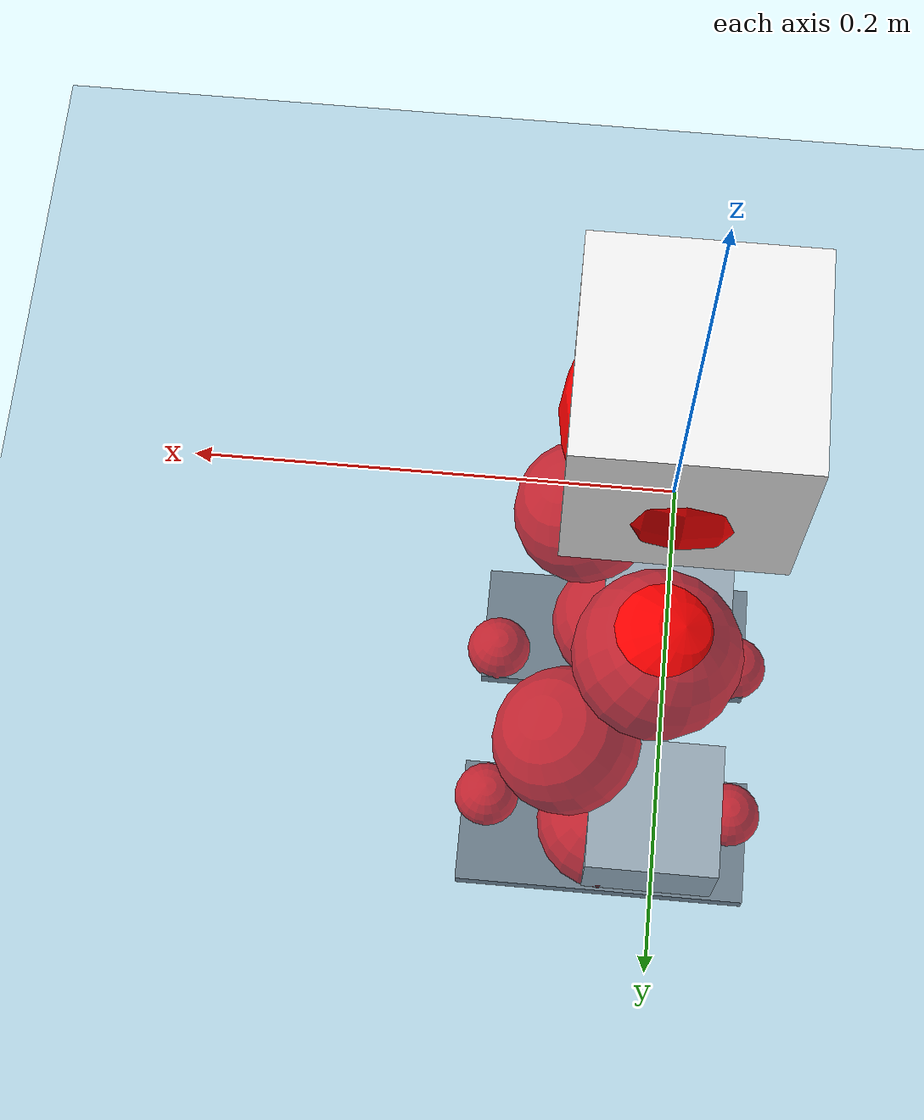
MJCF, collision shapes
<mujoco model="pi_12dof_release_v1">
  <compiler angle="radian" assetdir="assets" balanceinertia="true" inertiafromgeom="false"/>

  <option timestep="0.005" density="1.2" viscosity="2e-05"/>

  <size nkey="1"/>

  <visual>
    <quality shadowsize="8192"/>
    <map shadowclip="0.5"/>
  </visual>

  <default>
    <default class="/">
      <joint armature="0.01" damping="0.01" frictionloss="0.01"/>
      <geom contype="0" conaffinity="0" group="1" solref="-1000 -80"/>
      <site size="0.01 0.005 0.005" group="5"/>
      <general forcelimited="true" biastype="affine" gainprm="20" biasprm="0 -20 -0.5"/>
      <default class="foot">
        <geom size="0.0845 0.036 0.005" type="box" condim="6" group="4" priority="1" friction="0.9 0.2 0.2" solimp="0.015 1 0.005"/>
      </default>
      <default class="reward_collision_sphere">
        <geom group="5" rgba="1 0 0 1"/>
      </default>
    </default>
  </default>

  <asset>
    <texture type="skybox" colorspace="auto" name="//unnamed_texture_0" builtin="gradient" rgb1="0.95 0.95 0.95" rgb2="0.95 0.95 0.95" width="100" height="600"/>
    <texture type="2d" colorspace="auto" name="texplane" builtin="checker" rgb1="0.345 0.575 0.748" rgb2="0.345 0.575 0.748" markrgb="1 1 1" width="512" height="512"/>
    <material name="MatPlane" class="/" texture="texplane" texuniform="true" texrepeat="2 2" specular="0.9"/>
    <mesh name="baselink_1" class="/" file="baselink_1.STL"/>
    <mesh name="r_hip_pitch_link" class="/" file="r_hip_pitch_link.STL"/>
    <mesh name="r_hip_roll_link" class="/" file="r_hip_roll_link.STL"/>
    <mesh name="r_thigh_link" class="/" file="r_thigh_link.STL"/>
    <mesh name="r_calf_link" class="/" file="r_calf_link.STL"/>
    <mesh name="r_ankle_pitch_link" class="/" file="r_ankle_pitch_link.STL"/>
    <mesh name="r_ankle_roll_link" class="/" file="r_ankle_roll_link.STL"/>
    <mesh name="l_hip_pitch_link" class="/" file="l_hip_pitch_link.STL"/>
    <mesh name="l_hip_roll_link" class="/" file="l_hip_roll_link.STL"/>
    <mesh name="l_thigh_link" class="/" file="l_thigh_link.STL"/>
    <mesh name="l_calf_link" class="/" file="l_calf_link.STL"/>
    <mesh name="l_ankle_pitch_link" class="/" file="l_ankle_pitch_link.STL"/>
    <mesh name="l_ankle_roll_link" class="/" file="l_ankle_roll_link.STL"/>
  </asset>

  <worldbody>
    <geom name="floor" class="/" size="100 100 0.125" type="plane" group="0" material="MatPlane"/>
    <light name="toplight_shadow" class="/" pos="0 0 5" dir="0.0990148 0.0990148 -0.990148" type="directional" ambient="0.04 0.04 0.04" diffuse="0.55 0.55 0.55" specular="0.12 0.12 0.12"/>
    <light name="toplight_fill" class="/" pos="0 0 5" dir="0.0990148 0.0990148 -0.990148" type="directional" castshadow="false" ambient="0.04 0.04 0.04" diffuse="0.3 0.3 0.3" specular="0.08 0.08 0.08"/>
    <body name="trunk" pos="0.000562447 0.000293925 0.000565978" quat="1 2.05752e-05 -1.11976e-05 1.21887e-05">
      <inertial pos="0.00194554 -0.000865754 0.0383786" quat="0.694208 0.00873962 0.00900541 0.719665" mass="1.59285" diaginertia="0.0102069 0.00229213 0.00323449"/>
      <joint name="//unnamed_joint_0" type="free"/>
      <geom name="//unnamed_geom_1" class="/" type="mesh" density="0" rgba="1 1 1 1" mesh="baselink_1"/>
      <geom name="//unnamed_geom_2" class="/" size="0.0453596 0.0453596 0.0453596" pos="0 0 0.0761195" type="box" rgba="1 1 1 1"/>
      <geom name="//unnamed_geom_3" class="reward_collision_sphere" size="0.0498956" pos="0 0 0.0666046"/>
      <site name="imu" class="/" pos="0.00148903 -0.00388479 -0.000495134" size="0.00907192"/>
      <camera name="track" class="/" pos="0 -1.52183 0" quat="0.707107 0.707107 0 0" mode="trackcom"/>
      <camera name="ego_camera" class="/" pos="0.0756878 0 0.171269" quat="-0.5 -0.5 0.5 0.5"/>
      <body name="r_hip_pitch_link" pos="1.93812e-05 -0.0173816 -0.0318111" quat="0.992188 0.000211216 -0.124755 -0.000122446">
        <inertial pos="0.00155055 -0.0421264 0.000308958" quat="-0.0181086 0.706053 -0.0276892 0.707386" mass="0.279845" diaginertia="0.000115146 2.49367e-05 6.4807e-05"/>
        <joint name="r_hip_pitch_joint" class="/" pos="0 0 0" axis="-0.0013207 -0.999999 -0.000867553" stiffness="0.00309359" range="-1.73498 1.25285" armature="0.00894481" damping="0.0110708" frictionloss="0.00873035"/>
        <geom name="//unnamed_geom_4" class="/" type="mesh" density="0" rgba="0.75294 0.75294 0.75294 1" mesh="r_hip_pitch_link"/>
        <geom name="//unnamed_geom_5" class="/" size="0.000453596 0.000453596 0.000453596" type="box" rgba="0.75294 0.75294 0.75294 1"/>
        <body name="r_hip_roll_link" pos="-0.000721262 -0.0418481 -0.000385251" quat="1 -7.8296e-05 -0.000182602 0.000229827">
          <inertial pos="-0.00188717 0.000613529 -0.0587828" quat="0.705961 -0.0789706 -0.0824579 0.698987" mass="0.293783" diaginertia="0.000350387 7.13641e-05 0.00010203"/>
          <joint name="r_hip_roll_joint" class="/" pos="0 0 0" axis="-0.999993 0.000125282 -0.00385481" range="-0.129287 0.513043" armature="0.00919874" damping="0.00232495" frictionloss="0.00885912"/>
          <geom name="//unnamed_geom_6" class="/" type="mesh" density="0" rgba="0.75294 0.75294 0.75294 1" mesh="r_hip_roll_link"/>
          <geom name="//unnamed_geom_7" class="/" size="0.000453596 0.000453596 0.000453596" type="box" rgba="0.75294 0.75294 0.75294 1"/>
          <geom name="//unnamed_geom_8" class="reward_collision_sphere" size="0.0362877"/>
          <body name="r_thigh_link" pos="0.000355326 0.00104046 -0.0655036" quat="1 1.71686e-05 0.000144746 0.000350294">
            <inertial pos="0.00102057 0.000655433 -0.0461331" quat="0.737217 0.675656 -0.000543535 0.000738771" mass="0.0842269" diaginertia="0.000133311 2.40886e-05 4.57236e-05"/>
            <joint name="r_thigh_joint" class="/" pos="0 0 0" axis="0.000366563 0.00146981 -0.999999" range="-0.289504 0.578004" armature="0.0094053" damping="0.00491426" frictionloss="0.00880315"/>
            <geom name="//unnamed_geom_9" class="/" type="mesh" density="0" rgba="0.75294 0.75294 0.75294 1" mesh="r_thigh_link"/>
            <geom name="//unnamed_geom_10" class="/" size="0.000453596 0.000453596 0.000453596" type="box" rgba="0.75294 0.75294 0.75294 1"/>
            <body name="r_calf_link" pos="0.000383534 -0.00172554 -0.0668223" quat="0.9476 -0.000169158 0.319459 -0.000243943">
              <inertial pos="-0.000849982 -0.000295779 -0.0666418" quat="0.999971 -0.00342318 -0.000737648 0.00682154" mass="0.610155" diaginertia="0.00375676 0.000901748 0.000138992"/>
              <joint name="r_calf_joint" class="/" pos="0 0 0" axis="0.00441156 -0.999989 0.00151345" range="-1.64325 0.651051" armature="0.00901141" damping="0.00958374" frictionloss="0.00875213"/>
              <geom name="//unnamed_geom_11" class="/" type="mesh" density="0" rgba="0.75294 0.75294 0.75294 1" mesh="r_calf_link"/>
              <geom name="//unnamed_geom_12" class="/" size="0.000453596 0.000453596 0.000453596" type="box" rgba="0.75294 0.75294 0.75294 1"/>
              <geom name="//unnamed_geom_13" class="reward_collision_sphere" size="0.0362877"/>
              <body name="r_ankle_pitch_link" pos="0.000570269 0.000772275 -0.132929" quat="0.980077 7.36284e-05 -0.19862 -1.36081e-05">
                <inertial pos="0.00415081 0.00344878 -5.39726e-05" quat="0.00441343 0.709146 -0.00454124 0.705033" mass="0.13092" diaginertia="0.000325585 5.68878e-05 9.36012e-05"/>
                <joint name="r_ankle_pitch_joint" class="/" pos="0 0 0" axis="0.000210133 -1 0.000733433" range="-1.30753 0.501415" armature="0.0089478" damping="0.0104832" frictionloss="0.00870126"/>
                <geom name="//unnamed_geom_14" class="/" type="mesh" density="0" rgba="0.75294 0.75294 0.75294 1" mesh="r_ankle_pitch_link"/>
                <geom name="//unnamed_geom_15" class="/" size="0.0353805 0.0362877 0.0226798" type="box" rgba="0.75294 0.75294 0.75294 1"/>
                <body name="r_ankle_roll_link" pos="0.0772718 0.00369152 5.31018e-05" quat="1 -6.95172e-06 2.10156e-05 -1.27421e-05">
                  <inertial pos="-0.0242184 -0.000253568 -0.0138647" quat="0.55983 0.430401 0.434867 0.558781" mass="0.387862" diaginertia="0.00118548 0.000263293 0.000223165"/>
                  <joint name="r_ankle_roll_joint" class="/" pos="0 0 0" axis="-0.999996 -0.00249072 -0.00141443" range="-0.152192 0.144071" armature="0.00899112" damping="0.00292534" frictionloss="0.00908403"/>
                  <geom name="//unnamed_geom_16" class="/" type="mesh" density="0" rgba="0.75294 0.75294 0.75294 1" mesh="r_ankle_roll_link"/>
                  <geom name="//unnamed_geom_17" class="/" type="mesh" rgba="0.75294 0.75294 0.75294 1" mesh="r_ankle_roll_link"/>
                  <geom name="right_foot" class="foot" size="0.0754422 0.0330381 0.00458816" pos="-0.0514677 0 -0.0418657"/>
                  <geom name="//unnamed_geom_19" class="reward_collision_sphere" size="0.0362877" pos="-0.0504585 0 -0.0190299"/>
                  <geom name="//unnamed_geom_20" class="reward_collision_sphere" size="0.0181438" pos="0.0151376 0.0152183 -0.0380597"/>
                  <geom name="//unnamed_geom_21" class="reward_collision_sphere" size="0.0181438" pos="-0.1211 0.0152183 -0.0380597"/>
                  <site name="right_foot" class="foot" pos="-0.0514677 0 -0.0418657" size="0.00907192"/>
                </body>
              </body>
            </body>
          </body>
        </body>
      </body>
      <body name="l_hip_pitch_link" pos="0.00016995 0.0177439 -0.0306599" quat="0.992198 1.31119e-05 -0.124669 3.70384e-05">
        <inertial pos="0.000808337 0.0410111 0.00066585" quat="-0.0420002 0.705282 0.0299196 0.707048" mass="0.29318" diaginertia="0.000134655 2.69141e-05 7.89455e-05"/>
        <joint name="l_hip_pitch_joint" class="/" pos="0 0 0" axis="0.000224976 1 -0.000120565" range="-1.24811 1.75419" armature="0.00901724" damping="0.00919586" frictionloss="0.00909714"/>
        <geom name="//unnamed_geom_22" class="/" type="mesh" density="0" rgba="0.75294 0.75294 0.75294 1" mesh="l_hip_pitch_link"/>
        <geom name="//unnamed_geom_23" class="/" size="0.000453596 0.000453596 0.000453596" type="box" rgba="0.75294 0.75294 0.75294 1"/>
        <body name="l_hip_roll_link" pos="4.77601e-05 0.0428619 -0.000258692" quat="1 -4.48761e-06 -1.19868e-05 -4.83454e-06">
          <inertial pos="-0.00123396 -7.29177e-05 -0.0580068" quat="0.699251 -0.075258 -0.0780085 0.706611" mass="0.292484" diaginertia="0.000350108 7.14204e-05 9.96369e-05"/>
          <joint name="l_hip_roll_joint" class="/" pos="0 0 0" axis="-1 0.000706345 0.000602183" range="-0.499672 0.10363" armature="0.00909123" damping="0.00427779" frictionloss="0.00905225"/>
          <geom name="//unnamed_geom_24" class="/" type="mesh" density="0" rgba="0.75294 0.75294 0.75294 1" mesh="l_hip_roll_link"/>
          <geom name="//unnamed_geom_25" class="/" size="0.000453596 0.000453596 0.000453596" type="box" rgba="0.75294 0.75294 0.75294 1"/>
          <geom name="//unnamed_geom_26" class="reward_collision_sphere" size="0.0362877"/>
          <body name="l_thigh_link" pos="6.33943e-05 -0.000390134 -0.0664116" quat="1 8.92964e-05 -0.000131962 0.00013355">
            <inertial pos="0.000295944 -0.00111053 -0.0453007" quat="0.675411 0.737432 0.00335685 0.00152132" mass="0.0843179" diaginertia="0.000132279 2.41143e-05 4.4974e-05"/>
            <joint name="l_thigh_joint" class="/" pos="0 0 0" axis="-0.000177612 -0.000770617 -1" range="-0.601864 0.280954" armature="0.00878583" damping="0.00259444" frictionloss="0.00874122"/>
            <geom name="//unnamed_geom_27" class="/" type="mesh" density="0" rgba="0.75294 0.75294 0.75294 1" mesh="l_thigh_link"/>
            <geom name="//unnamed_geom_28" class="/" size="0.000453596 0.000453596 0.000453596" type="box" rgba="0.75294 0.75294 0.75294 1"/>
            <body name="l_calf_link" pos="-0.000157478 0.00109257 -0.0675559" quat="0.947634 -0.000146237 0.319359 4.02355e-05">
              <inertial pos="0.000602081 0.00148009 -0.067376" quat="0.999989 0.00447071 0.00118967 0.00105094" mass="0.607748" diaginertia="0.00367841 0.000892681 0.000136687"/>
              <joint name="l_calf_joint" class="/" pos="0 0 0" axis="0.00248646 0.999993 0.00277617" stiffness="0.00212523" range="-0.651647 1.66905" armature="0.00921823" damping="0.00652193" frictionloss="0.00925283"/>
              <geom name="//unnamed_geom_29" class="/" type="mesh" density="0" rgba="0.75294 0.75294 0.75294 1" mesh="l_calf_link"/>
              <geom name="//unnamed_geom_30" class="/" size="0.000453596 0.000453596 0.000453596" type="box" rgba="0.75294 0.75294 0.75294 1"/>
              <geom name="//unnamed_geom_31" class="reward_collision_sphere" size="0.0362877"/>
              <body name="l_ankle_pitch_link" pos="0.000410974 0.00101299 -0.133828" quat="0.980076 4.60159e-05 -0.198624 3.97053e-05">
                <inertial pos="0.00475776 -0.000910632 -9.99788e-06" quat="-0.00219824 0.706748 0.00216399 0.707458" mass="0.131896" diaginertia="0.000320768 5.59424e-05 9.33047e-05"/>
                <joint name="l_ankle_pitch_joint" class="/" pos="0 0 0" axis="-0.000150638 1 0.000113581" stiffness="0.00209726" range="-0.504815 1.29871" armature="0.00909155" damping="0.00675555" frictionloss="0.00887347"/>
                <geom name="//unnamed_geom_32" class="/" type="mesh" density="0" rgba="0.75294 0.75294 0.75294 1" mesh="l_ankle_pitch_link"/>
                <geom name="//unnamed_geom_33" class="/" size="0.0353805 0.0362877 0.0226798" type="box" rgba="0.75294 0.75294 0.75294 1"/>
                <body name="l_ankle_roll_link" pos="0.0766362 0.000323186 -0.000595129" quat="1 -8.43484e-05 0.000133355 4.54607e-05">
                  <inertial pos="-0.0241541 -0.000732667 -0.0138379" quat="0.560611 0.428988 0.437097 0.557343" mass="0.388414" diaginertia="0.00118204 0.000263426 0.000219321"/>
                  <joint name="l_ankle_roll_joint" class="/" pos="0 0 0" axis="-1 3.39137e-05 0.000438394" range="-0.155404 0.141334" armature="0.00905048" damping="0.00369263" frictionloss="0.00918217"/>
                  <geom name="//unnamed_geom_34" class="/" type="mesh" density="0" rgba="0.75294 0.75294 0.75294 1" mesh="l_ankle_roll_link"/>
                  <geom name="//unnamed_geom_35" class="/" type="mesh" rgba="0.75294 0.75294 0.75294 1" mesh="l_ankle_roll_link"/>
                  <geom name="left_foot" class="foot" size="0.0800794 0.0343536 0.00453157" pos="-0.0514677 0 -0.0418657"/>
                  <geom name="//unnamed_geom_37" class="reward_collision_sphere" size="0.0362877" pos="-0.0504585 0 -0.0190299"/>
                  <geom name="//unnamed_geom_38" class="reward_collision_sphere" size="0.0181438" pos="0.0151376 -0.0152183 -0.0380597"/>
                  <geom name="//unnamed_geom_39" class="reward_collision_sphere" size="0.0181438" pos="-0.1211 -0.0152183 -0.0380597"/>
                  <site name="left_foot" class="foot" pos="-0.0514677 0 -0.0418657" size="0.00907192"/>
                </body>
              </body>
            </body>
          </body>
        </body>
      </body>
    </body>
  </worldbody>

  <contact>
    <pair class="/" geom1="floor" geom2="right_foot" name="//unnamed_contact_1"/>
    <pair class="/" geom1="floor" geom2="left_foot" name="//unnamed_contact_0"/>
  </contact>

  <actuator>
    <general name="r_hip_pitch_joint" class="/" joint="r_hip_pitch_joint" forcerange="-18.9359 18.9359" gainprm="18.1675" biasprm="0 -18.1675 -0.444616"/>
    <general name="r_hip_roll_joint" class="/" joint="r_hip_roll_joint" forcerange="-18.4514 18.4514" gainprm="18.1675" biasprm="0 -18.1675 -0.444616"/>
    <general name="r_thigh_joint" class="/" joint="r_thigh_joint" forcerange="-18.9274 18.9274" gainprm="18.1675" biasprm="0 -18.1675 -0.444616"/>
    <general name="r_calf_joint" class="/" joint="r_calf_joint" forcerange="-19.3383 19.3383" gainprm="18.1675" biasprm="0 -18.1675 -0.444616"/>
    <general name="r_ankle_pitch_joint" class="/" joint="r_ankle_pitch_joint" forcerange="-19.3178 19.3178" gainprm="18.1675" biasprm="0 -18.1675 -0.444616"/>
    <general name="r_ankle_roll_joint" class="/" joint="r_ankle_roll_joint" forcerange="-19.0782 19.0782" gainprm="18.1675" biasprm="0 -18.1675 -0.444616"/>
    <general name="l_hip_pitch_joint" class="/" joint="l_hip_pitch_joint" forcerange="-19.1552 19.1552" gainprm="18.1675" biasprm="0 -18.1675 -0.444616"/>
    <general name="l_hip_roll_joint" class="/" joint="l_hip_roll_joint" forcerange="-19.5854 19.5854" gainprm="18.1675" biasprm="0 -18.1675 -0.444616"/>
    <general name="l_thigh_joint" class="/" joint="l_thigh_joint" forcerange="-19.0817 19.0817" gainprm="18.1675" biasprm="0 -18.1675 -0.444616"/>
    <general name="l_calf_joint" class="/" joint="l_calf_joint" forcerange="-19.0175 19.0175" gainprm="18.1675" biasprm="0 -18.1675 -0.444616"/>
    <general name="l_ankle_pitch_joint" class="/" joint="l_ankle_pitch_joint" forcerange="-18.5297 18.5297" gainprm="18.1675" biasprm="0 -18.1675 -0.444616"/>
    <general name="l_ankle_roll_joint" class="/" joint="l_ankle_roll_joint" forcerange="-18.9686 18.9686" gainprm="18.1675" biasprm="0 -18.1675 -0.444616"/>
  </actuator>

  <sensor>
    <gyro site="imu" name="imu_angular_velocity"/>
    <velocimeter site="imu" name="imu_linear_velocity"/>
    <framelinvel objtype="site" objname="left_foot" name="left_foot_global_linear_velocity"/>
    <framelinvel objtype="site" objname="right_foot" name="right_foot_global_linear_velocity"/>
  </sensor>

  <keyframe>
    <key name="home" qpos="0 0 0.291 1 0 0 0 0.4 0 0 -0.8 0.4 0 -0.4 0 0 0.8 -0.4 0"/>
  </keyframe>
</mujoco>
